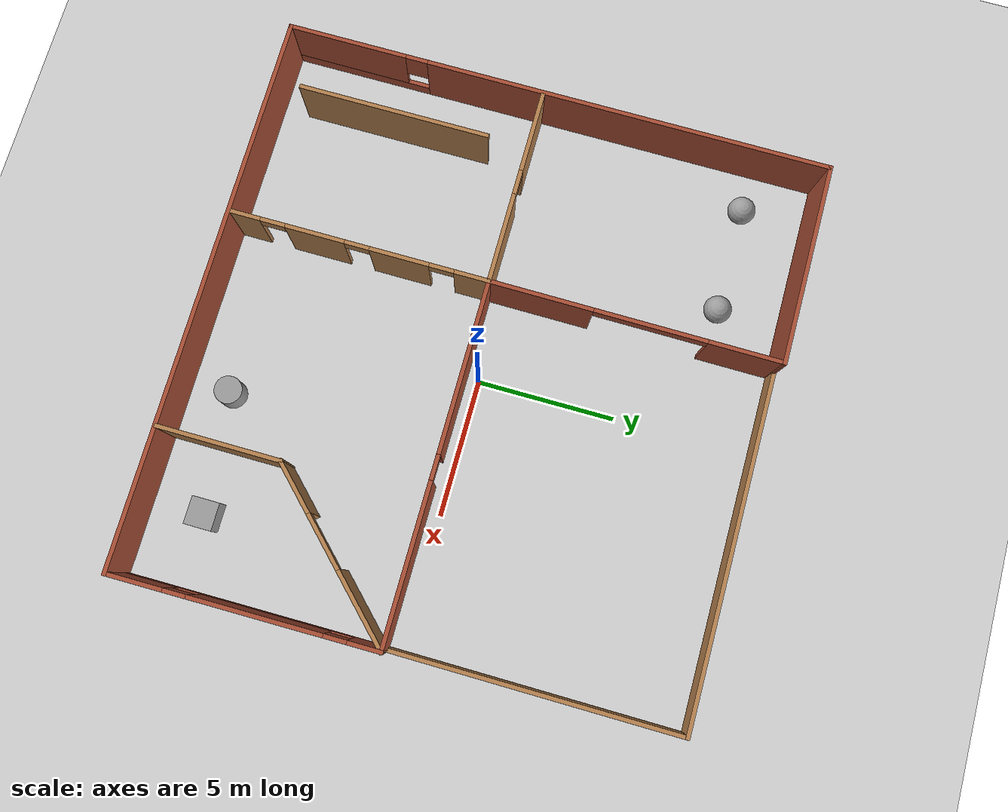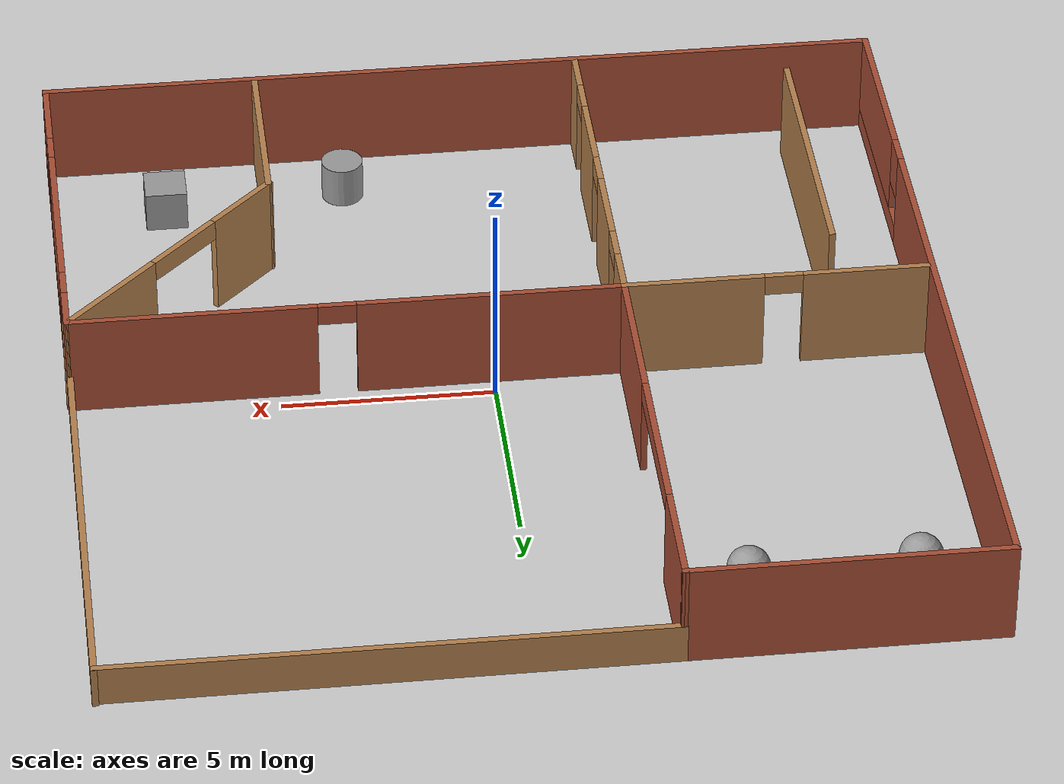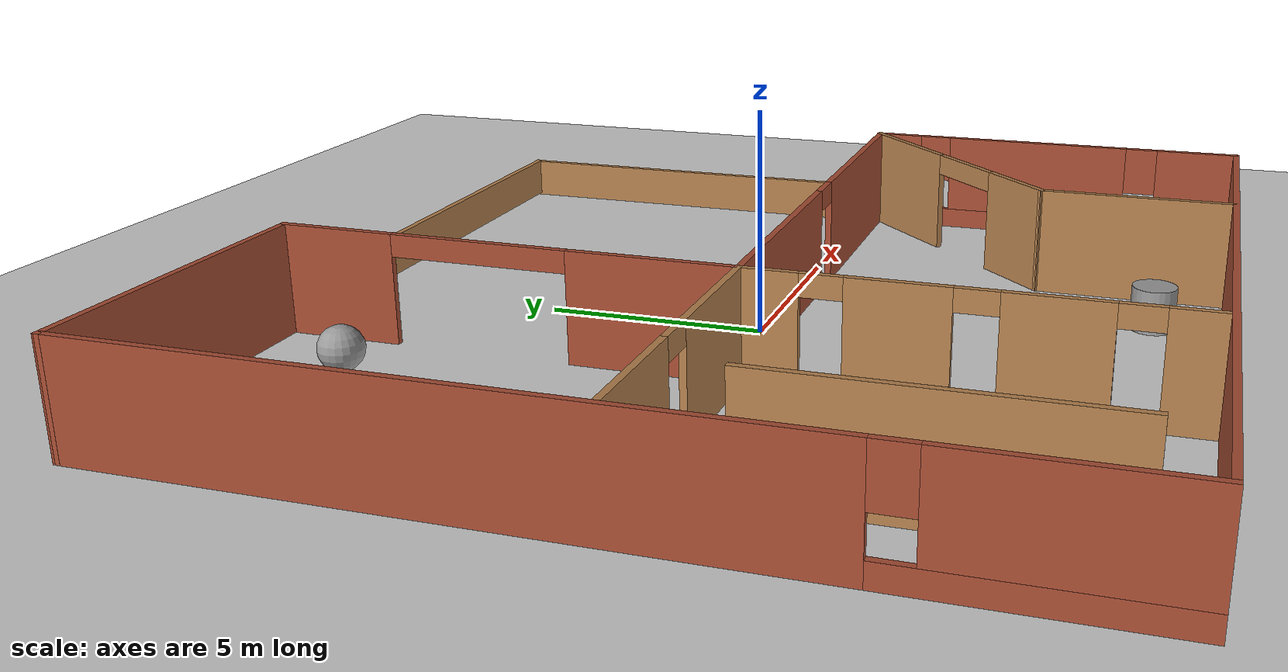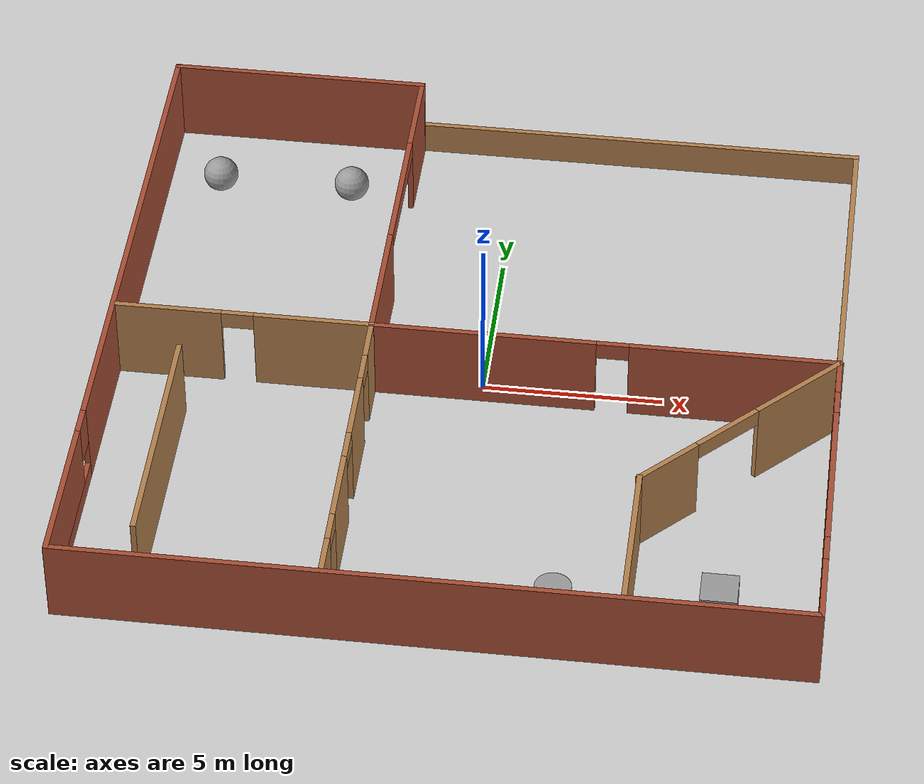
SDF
<sdf version="1.7">
 <world name="default">
  <model name="ground_plane">
   <static>1</static>
   <link name="link">
    <collision name="collision">
     <geometry><plane><normal>0 0 1</normal><size>100 100</size></plane></geometry>
     <surface><friction><ode><mu>100</mu><mu2>50</mu2></ode></friction></surface>
    </collision>
    <visual name="visual">
     <cast_shadows>0</cast_shadows>
     <geometry><plane><normal>0 0 1</normal><size>100 100</size></plane></geometry>
     <material>
      <script><uri>file://media/materials/scripts/gazebo.material</uri><name>Gazebo/Grey</name></script>
     </material>
    </visual>
   </link>
  </model>
  <model name="test_room">
   <pose>-0.185701 0.02346 0 0 -0 0</pose>
   <link name="Wall_1">
    <pose>-10.0852 -7e-06 0 0 -0 -1.5708</pose>
    <visual name="Wall_1_Visual_0">
     <pose>-2.60084 0 1.25 0 -0 0</pose>
     <geometry><box><size>14.8266 0.15 2.5</size></box></geometry>
     <material>
      <script><uri>file://media/materials/scripts/gazebo.material</uri><name>Gazebo/Bricks</name></script>
      <ambient>1 1 1 1</ambient>
     </material>
     <meta><layer>0</layer></meta>
    </visual>
    <collision name="Wall_1_Collision_0">
     <geometry><box><size>14.8266 0.15 2.5</size></box></geometry>
     <pose>-2.60084 0 1.25 0 -0 0</pose>
    </collision>
    <visual name="Wall_1_Visual_1">
     <pose>7.41331 0 0.25 0 -0 0</pose>
     <geometry><box><size>5.20167 0.15 0.5</size></box></geometry>
     <material>
      <script><uri>file://media/materials/scripts/gazebo.material</uri><name>Gazebo/Bricks</name></script>
      <ambient>1 1 1 1</ambient>
     </material>
     <meta><layer>0</layer></meta>
    </visual>
    <collision name="Wall_1_Collision_1">
     <geometry><box><size>5.20167 0.15 0.5</size></box></geometry>
     <pose>7.41331 0 0.25 0 -0 0</pose>
    </collision>
    <visual name="Wall_1_Visual_2">
     <pose>7.81331 0 1.5 0 -0 0</pose>
     <geometry><box><size>4.40167 0.15 2</size></box></geometry>
     <material>
      <script><uri>file://media/materials/scripts/gazebo.material</uri><name>Gazebo/Bricks</name></script>
      <ambient>1 1 1 1</ambient>
     </material>
     <meta><layer>0</layer></meta>
    </visual>
    <collision name="Wall_1_Collision_2">
     <geometry><box><size>4.40167 0.15 2</size></box></geometry>
     <pose>7.81331 0 1.5 0 -0 0</pose>
    </collision>
    <visual name="Wall_1_Visual_3">
     <pose>5.21248 0 1.9 0 -0 0</pose>
     <geometry><box><size>0.8 0.15 1.2</size></box></geometry>
     <material>
      <script><uri>file://media/materials/scripts/gazebo.material</uri><name>Gazebo/Bricks</name></script>
      <ambient>1 1 1 1</ambient>
     </material>
     <meta><layer>0</layer></meta>
    </visual>
    <collision name="Wall_1_Collision_3">
     <geometry><box><size>0.8 0.15 1.2</size></box></geometry>
     <pose>5.21248 0 1.9 0 -0 0</pose>
    </collision>
   </link>
   <link name="Wall_10">
    <pose>10.0526 -5.21899 0 0 -0 -1.56433</pose>
    <visual name="Wall_10_Visual_0">
     <pose>-4.1681 0 1.25 0 -0 0</pose>
     <geometry><box><size>1.23337 0.15 2.5</size></box></geometry>
     <material>
      <script><uri>file://media/materials/scripts/gazebo.material</uri><name>Gazebo/Bricks</name></script>
      <ambient>1 1 1 1</ambient>
     </material>
     <meta><layer>0</layer></meta>
    </visual>
    <collision name="Wall_10_Collision_0">
     <geometry><box><size>1.23337 0.15 2.5</size></box></geometry>
     <pose>-4.1681 0 1.25 0 -0 0</pose>
    </collision>
    <visual name="Wall_10_Visual_1">
     <pose>0.616686 0 0.25 0 -0 0</pose>
     <geometry><box><size>8.3362 0.15 0.5</size></box></geometry>
     <material>
      <script><uri>file://media/materials/scripts/gazebo.material</uri><name>Gazebo/Bricks</name></script>
      <ambient>1 1 1 1</ambient>
     </material>
     <meta><layer>0</layer></meta>
    </visual>
    <collision name="Wall_10_Collision_1">
     <geometry><box><size>8.3362 0.15 0.5</size></box></geometry>
     <pose>0.616686 0 0.25 0 -0 0</pose>
    </collision>
    <visual name="Wall_10_Visual_2">
     <pose>-0.410197 0 1.5 0 -0 0</pose>
     <geometry><box><size>4.68244 0.15 2</size></box></geometry>
     <material>
      <script><uri>file://media/materials/scripts/gazebo.material</uri><name>Gazebo/Bricks</name></script>
      <ambient>1 1 1 1</ambient>
     </material>
     <meta><layer>0</layer></meta>
    </visual>
    <collision name="Wall_10_Collision_2">
     <geometry><box><size>4.68244 0.15 2</size></box></geometry>
     <pose>-0.410197 0 1.5 0 -0 0</pose>
    </collision>
    <visual name="Wall_10_Visual_3">
     <pose>3.75791 0 1.5 0 -0 0</pose>
     <geometry><box><size>2.05376 0.15 2</size></box></geometry>
     <material>
      <script><uri>file://media/materials/scripts/gazebo.material</uri><name>Gazebo/Bricks</name></script>
      <ambient>1 1 1 1</ambient>
     </material>
     <meta><layer>0</layer></meta>
    </visual>
    <collision name="Wall_10_Collision_3">
     <geometry><box><size>2.05376 0.15 2</size></box></geometry>
     <pose>3.75791 0 1.5 0 -0 0</pose>
    </collision>
    <visual name="Wall_10_Visual_4">
     <pose>-3.15142 0 1.9 0 -0 0</pose>
     <geometry><box><size>0.8 0.15 1.2</size></box></geometry>
     <material>
      <script><uri>file://media/materials/scripts/gazebo.material</uri><name>Gazebo/Bricks</name></script>
      <ambient>1 1 1 1</ambient>
     </material>
     <meta><layer>0</layer></meta>
    </visual>
    <collision name="Wall_10_Collision_4">
     <geometry><box><size>0.8 0.15 1.2</size></box></geometry>
     <pose>-3.15142 0 1.9 0 -0 0</pose>
    </collision>
    <visual name="Wall_10_Visual_5">
     <pose>2.33102 0 1.9 0 -0 0</pose>
     <geometry><box><size>0.8 0.15 1.2</size></box></geometry>
     <material>
      <script><uri>file://media/materials/scripts/gazebo.material</uri><name>Gazebo/Bricks</name></script>
      <ambient>1 1 1 1</ambient>
     </material>
     <meta><layer>0</layer></meta>
    </visual>
    <collision name="Wall_10_Collision_5">
     <geometry><box><size>0.8 0.15 1.2</size></box></geometry>
     <pose>2.33102 0 1.9 0 -0 0</pose>
    </collision>
   </link>
   <link name="Wall_12">
    <collision name="Wall_12_Collision">
     <geometry><box><size>7.41264 0.15 2.5</size></box></geometry>
     <pose>0 0 1.25 0 -0 0</pose>
    </collision>
    <visual name="Wall_12_Visual">
     <pose>0 0 1.25 0 -0 0</pose>
     <geometry><box><size>7.41264 0.15 2.5</size></box></geometry>
     <material>
      <script><uri>file://media/materials/scripts/gazebo.material</uri><name>Gazebo/Bricks</name></script>
      <ambient>1 1 1 1</ambient>
     </material>
     <meta><layer>0</layer></meta>
    </visual>
    <pose>-6.45385 9.93841 0 0 -0 -0.000203</pose>
   </link>
   <link name="Wall_16">
    <pose>-6.41315 -0.507168 0 0 -0 3.14159</pose>
    <visual name="Wall_16_Visual_0">
     <pose>-1.94676 0 1.25 0 -0 0</pose>
     <geometry><box><size>3.35648 0.15 2.5</size></box></geometry>
     <material>
      <script><uri>file://media/materials/scripts/gazebo.material</uri><name>Gazebo/Wood</name></script>
      <ambient>1 1 1 1</ambient>
     </material>
     <meta><layer>0</layer></meta>
    </visual>
    <collision name="Wall_16_Collision_0">
     <geometry><box><size>3.35648 0.15 2.5</size></box></geometry>
     <pose>-1.94676 0 1.25 0 -0 0</pose>
    </collision>
    <visual name="Wall_16_Visual_1">
     <pose>2.12824 0 1.25 0 -0 0</pose>
     <geometry><box><size>2.99352 0.15 2.5</size></box></geometry>
     <material>
      <script><uri>file://media/materials/scripts/gazebo.material</uri><name>Gazebo/Wood</name></script>
      <ambient>1 1 1 1</ambient>
     </material>
     <meta><layer>0</layer></meta>
    </visual>
    <collision name="Wall_16_Collision_1">
     <geometry><box><size>2.99352 0.15 2.5</size></box></geometry>
     <pose>2.12824 0 1.25 0 -0 0</pose>
    </collision>
    <visual name="Wall_16_Visual_2">
     <pose>0.181481 0 2.25 0 -0 0</pose>
     <geometry><box><size>0.9 0.15 0.5</size></box></geometry>
     <material>
      <script><uri>file://media/materials/scripts/gazebo.material</uri><name>Gazebo/Wood</name></script>
      <ambient>1 1 1 1</ambient>
     </material>
     <meta><layer>0</layer></meta>
    </visual>
    <collision name="Wall_16_Collision_2">
     <geometry><box><size>0.9 0.15 0.5</size></box></geometry>
     <pose>0.181481 0 2.25 0 -0 0</pose>
    </collision>
   </link>
   <link name="Wall_18">
    <pose>-2.86315 -5.18217 0 0 -0 -1.5708</pose>
    <visual name="Wall_18_Visual_0">
     <pose>-4.08833 0 1.25 0 -0 0</pose>
     <geometry><box><size>1.32334 0.15 2.5</size></box></geometry>
     <material>
      <script><uri>file://media/materials/scripts/gazebo.material</uri><name>Gazebo/Wood</name></script>
      <ambient>1 1 1 1</ambient>
     </material>
     <meta><layer>0</layer></meta>
    </visual>
    <collision name="Wall_18_Collision_0">
     <geometry><box><size>1.32334 0.15 2.5</size></box></geometry>
     <pose>-4.08833 0 1.25 0 -0 0</pose>
    </collision>
    <visual name="Wall_18_Visual_1">
     <pose>-1.45004 0 1.25 0 -0 0</pose>
     <geometry><box><size>2.15324 0.15 2.5</size></box></geometry>
     <material>
      <script><uri>file://media/materials/scripts/gazebo.material</uri><name>Gazebo/Wood</name></script>
      <ambient>1 1 1 1</ambient>
     </material>
     <meta><layer>0</layer></meta>
    </visual>
    <collision name="Wall_18_Collision_1">
     <geometry><box><size>2.15324 0.15 2.5</size></box></geometry>
     <pose>-1.45004 0 1.25 0 -0 0</pose>
    </collision>
    <visual name="Wall_18_Visual_2">
     <pose>1.60632 0 1.25 0 -0 0</pose>
     <geometry><box><size>2.15948 0.15 2.5</size></box></geometry>
     <material>
      <script><uri>file://media/materials/scripts/gazebo.material</uri><name>Gazebo/Wood</name></script>
      <ambient>1 1 1 1</ambient>
     </material>
     <meta><layer>0</layer></meta>
    </visual>
    <collision name="Wall_18_Collision_2">
     <geometry><box><size>2.15948 0.15 2.5</size></box></geometry>
     <pose>1.60632 0 1.25 0 -0 0</pose>
    </collision>
    <visual name="Wall_18_Visual_3">
     <pose>4.16803 0 1.25 0 -0 0</pose>
     <geometry><box><size>1.16395 0.15 2.5</size></box></geometry>
     <material>
      <script><uri>file://media/materials/scripts/gazebo.material</uri><name>Gazebo/Wood</name></script>
      <ambient>1 1 1 1</ambient>
     </material>
     <meta><layer>0</layer></meta>
    </visual>
    <collision name="Wall_18_Collision_3">
     <geometry><box><size>1.16395 0.15 2.5</size></box></geometry>
     <pose>4.16803 0 1.25 0 -0 0</pose>
    </collision>
    <visual name="Wall_18_Visual_4">
     <pose>-2.97666 0 2.25 0 -0 0</pose>
     <geometry><box><size>0.9 0.15 0.5</size></box></geometry>
     <material>
      <script><uri>file://media/materials/scripts/gazebo.material</uri><name>Gazebo/Wood</name></script>
      <ambient>1 1 1 1</ambient>
     </material>
     <meta><layer>0</layer></meta>
    </visual>
    <collision name="Wall_18_Collision_4">
     <geometry><box><size>0.9 0.15 0.5</size></box></geometry>
     <pose>-2.97666 0 2.25 0 -0 0</pose>
    </collision>
    <visual name="Wall_18_Visual_5">
     <pose>0.076577 0 2.25 0 -0 0</pose>
     <geometry><box><size>0.9 0.15 0.5</size></box></geometry>
     <material>
      <script><uri>file://media/materials/scripts/gazebo.material</uri><name>Gazebo/Wood</name></script>
      <ambient>1 1 1 1</ambient>
     </material>
     <meta><layer>0</layer></meta>
    </visual>
    <collision name="Wall_18_Collision_5">
     <geometry><box><size>0.9 0.15 0.5</size></box></geometry>
     <pose>0.076577 0 2.25 0 -0 0</pose>
    </collision>
    <visual name="Wall_18_Visual_6">
     <pose>3.13605 0 2.25 0 -0 0</pose>
     <geometry><box><size>0.9 0.15 0.5</size></box></geometry>
     <material>
      <script><uri>file://media/materials/scripts/gazebo.material</uri><name>Gazebo/Wood</name></script>
      <ambient>1 1 1 1</ambient>
     </material>
     <meta><layer>0</layer></meta>
    </visual>
    <collision name="Wall_18_Collision_6">
     <geometry><box><size>0.9 0.15 0.5</size></box></geometry>
     <pose>3.13605 0 2.25 0 -0 0</pose>
    </collision>
   </link>
   <link name="Wall_20">
    <collision name="Wall_20_Collision">
     <geometry><box><size>7 0.15 2.5</size></box></geometry>
     <pose>0 0 1.25 0 -0 0</pose>
    </collision>
    <visual name="Wall_20_Visual">
     <pose>0 0 1.25 0 -0 0</pose>
     <geometry><box><size>7 0.15 2.5</size></box></geometry>
     <material>
      <script><uri>file://media/materials/scripts/gazebo.material</uri><name>Gazebo/Wood</name></script>
      <ambient>1 1 1 1</ambient>
     </material>
     <meta><layer>0</layer></meta>
    </visual>
    <pose>-7.96917 -5.44423 0 0 -0 -1.5708</pose>
   </link>
   <link name="Wall_22">
    <pose>7.51188 -3.01953 0 0 -0 -2.35619</pose>
    <visual name="Wall_22_Visual_0">
     <pose>-2.09265 0 1.25 0 -0 0</pose>
     <geometry><box><size>3.06471 0.15 2.5</size></box></geometry>
     <material>
      <script><uri>file://media/materials/scripts/gazebo.material</uri><name>Gazebo/Wood</name></script>
      <ambient>1 1 1 1</ambient>
     </material>
     <meta><layer>0</layer></meta>
    </visual>
    <collision name="Wall_22_Collision_0">
     <geometry><box><size>3.06471 0.15 2.5</size></box></geometry>
     <pose>-2.09265 0 1.25 0 -0 0</pose>
    </collision>
    <visual name="Wall_22_Visual_1">
     <pose>2.58752 0 1.25 0 -0 0</pose>
     <geometry><box><size>2.07496 0.15 2.5</size></box></geometry>
     <material>
      <script><uri>file://media/materials/scripts/gazebo.material</uri><name>Gazebo/Wood</name></script>
      <ambient>1 1 1 1</ambient>
     </material>
     <meta><layer>0</layer></meta>
    </visual>
    <collision name="Wall_22_Collision_1">
     <geometry><box><size>2.07496 0.15 2.5</size></box></geometry>
     <pose>2.58752 0 1.25 0 -0 0</pose>
    </collision>
    <visual name="Wall_22_Visual_2">
     <pose>0.494874 0 2.25 0 -0 0</pose>
     <geometry><box><size>2.11033 0.15 0.5</size></box></geometry>
     <material>
      <script><uri>file://media/materials/scripts/gazebo.material</uri><name>Gazebo/Wood</name></script>
      <ambient>1 1 1 1</ambient>
     </material>
     <meta><layer>0</layer></meta>
    </visual>
    <collision name="Wall_22_Collision_2">
     <geometry><box><size>2.11033 0.15 0.5</size></box></geometry>
     <pose>0.494874 0 2.25 0 -0 0</pose>
    </collision>
   </link>
   <link name="Wall_23">
    <collision name="Wall_23_Collision">
     <geometry><box><size>4.5 0.15 2.5</size></box></geometry>
     <pose>0 0 1.25 0 -0 0</pose>
    </collision>
    <visual name="Wall_23_Visual">
     <pose>0 0 1.25 0 -0 0</pose>
     <geometry><box><size>4.5 0.15 2.5</size></box></geometry>
     <material>
      <script><uri>file://media/materials/scripts/gazebo.material</uri><name>Gazebo/Wood</name></script>
      <ambient>1 1 1 1</ambient>
     </material>
     <meta><layer>0</layer></meta>
    </visual>
    <pose>5.00165 -7.70476 0 0 -0 -1.5708</pose>
   </link>
   <link name="Wall_3">
    <collision name="Wall_3_Collision">
     <geometry><box><size>20.3204 0.15 2.5</size></box></geometry>
     <pose>0 0 1.25 0 -0 0</pose>
    </collision>
    <visual name="Wall_3_Visual">
     <pose>0 0 1.25 0 -0 0</pose>
     <geometry><box><size>20.3204 0.15 2.5</size></box></geometry>
     <material>
      <script><uri>file://media/materials/scripts/gazebo.material</uri><name>Gazebo/Bricks</name></script>
      <ambient>1 1 1 1</ambient>
     </material>
     <meta><layer>0</layer></meta>
    </visual>
    <pose>8e-06 -9.93916 0 0 -0 0</pose>
   </link>
   <link name="Wall_7">
    <pose>-2.84231 4.71525 0 0 -0 -1.57458</pose>
    <visual name="Wall_7_Visual_0">
     <pose>-3.92845 0 1.25 0 -0 0</pose>
     <geometry><box><size>2.73806 0.15 2.5</size></box></geometry>
     <material>
      <script><uri>file://media/materials/scripts/gazebo.material</uri><name>Gazebo/Bricks</name></script>
      <ambient>1 1 1 1</ambient>
     </material>
     <meta><layer>0</layer></meta>
    </visual>
    <collision name="Wall_7_Collision_0">
     <geometry><box><size>2.73806 0.15 2.5</size></box></geometry>
     <pose>-3.92845 0 1.25 0 -0 0</pose>
    </collision>
    <visual name="Wall_7_Visual_1">
     <pose>3.38844 0 1.25 0 -0 0</pose>
     <geometry><box><size>3.81807 0.15 2.5</size></box></geometry>
     <material>
      <script><uri>file://media/materials/scripts/gazebo.material</uri><name>Gazebo/Bricks</name></script>
      <ambient>1 1 1 1</ambient>
     </material>
     <meta><layer>0</layer></meta>
    </visual>
    <collision name="Wall_7_Collision_1">
     <geometry><box><size>3.81807 0.15 2.5</size></box></geometry>
     <pose>3.38844 0 1.25 0 -0 0</pose>
    </collision>
    <visual name="Wall_7_Visual_2">
     <pose>-0.540004 0 2.25 0 -0 0</pose>
     <geometry><box><size>4.03882 0.15 0.5</size></box></geometry>
     <material>
      <script><uri>file://media/materials/scripts/gazebo.material</uri><name>Gazebo/Bricks</name></script>
      <ambient>1 1 1 1</ambient>
     </material>
     <meta><layer>0</layer></meta>
    </visual>
    <collision name="Wall_7_Collision_2">
     <geometry><box><size>4.03882 0.15 0.5</size></box></geometry>
     <pose>-0.540004 0 2.25 0 -0 0</pose>
    </collision>
   </link>
   <link name="Wall_8">
    <pose>3.58001 -0.508237 0 0 -0 -0.000166</pose>
    <visual name="Wall_8_Visual_0">
     <pose>-3.36964 0 1.25 0 -0 0</pose>
     <geometry><box><size>6.29492 0.15 2.5</size></box></geometry>
     <material>
      <script><uri>file://media/materials/scripts/gazebo.material</uri><name>Gazebo/Bricks</name></script>
      <ambient>1 1 1 1</ambient>
     </material>
     <meta><layer>0</layer></meta>
    </visual>
    <collision name="Wall_8_Collision_0">
     <geometry><box><size>6.29492 0.15 2.5</size></box></geometry>
     <pose>-3.36964 0 1.25 0 -0 0</pose>
    </collision>
    <visual name="Wall_8_Visual_1">
     <pose>3.59746 0 1.25 0 -0 0</pose>
     <geometry><box><size>5.83927 0.15 2.5</size></box></geometry>
     <material>
      <script><uri>file://media/materials/scripts/gazebo.material</uri><name>Gazebo/Bricks</name></script>
      <ambient>1 1 1 1</ambient>
     </material>
     <meta><layer>0</layer></meta>
    </visual>
    <collision name="Wall_8_Collision_1">
     <geometry><box><size>5.83927 0.15 2.5</size></box></geometry>
     <pose>3.59746 0 1.25 0 -0 0</pose>
    </collision>
    <visual name="Wall_8_Visual_2">
     <pose>0.227824 0 2.25 0 -0 0</pose>
     <geometry><box><size>0.9 0.15 0.5</size></box></geometry>
     <material>
      <script><uri>file://media/materials/scripts/gazebo.material</uri><name>Gazebo/Bricks</name></script>
      <ambient>1 1 1 1</ambient>
     </material>
     <meta><layer>0</layer></meta>
    </visual>
    <collision name="Wall_8_Collision_2">
     <geometry><box><size>0.9 0.15 0.5</size></box></geometry>
     <pose>0.227824 0 2.25 0 -0 0</pose>
    </collision>
   </link>
   <static>1</static>
  </model>
  <model name="wooden_fence">
   <link name="Wall_14">
    <pose>6.425 0 -0.775596 0 -0 1.5708</pose>
    <inertial>
     <inertia><ixx>0.01</ixx><ixy>0.0</ixy><ixz>0.0</ixz><iyy>0.01</iyy><iyz>0.0</iyz><izz>0.01</izz></inertia>
     <mass>1.0</mass>
    </inertial>
    <visual name="Wall_14_Visual">
     <pose>0 0 1.25 0 -0 0</pose>
     <geometry><box><size>10.5 0.15 1.0201</size></box></geometry>
     <material>
      <script><uri>file://media/materials/scripts/gazebo.material</uri><name>Gazebo/Wood</name></script>
      <ambient>1 1 1 1</ambient>
      <shader type="pixel"/>
     </material>
     <meta><layer>0</layer></meta>
    </visual>
    <collision name="Wall_14_Collision">
     <pose>0 0 1.25 0 -0 0</pose>
     <geometry><box><size>10.5 0.15 1.0201</size></box></geometry>
     <surface>
      <friction>
       <ode><mu>1</mu><mu2>1</mu2><fdir1>0 0 0</fdir1><slip1>0</slip1><slip2>0</slip2></ode>
       <torsional>
        <coefficient>1</coefficient>
        <patch_radius>0</patch_radius>
        <surface_radius>0</surface_radius>
        <use_patch_radius>1</use_patch_radius>
        <ode><slip>0</slip></ode>
       </torsional>
      </friction>
      <bounce><restitution_coefficient>0</restitution_coefficient><threshold>1e+06</threshold></bounce>
      <contact>
       <collide_without_contact>0</collide_without_contact>
       <collide_without_contact_bitmask>1</collide_without_contact_bitmask>
       <collide_bitmask>1</collide_bitmask>
       <ode>
        <soft_cfm>0</soft_cfm>
        <soft_erp>0.2</soft_erp>
        <kp>1e+13</kp>
        <kd>1</kd>
        <max_vel>0.01</max_vel>
        <min_depth>0</min_depth>
       </ode>
       <bullet>
        <split_impulse>1</split_impulse>
        <split_impulse_penetration_threshold>-0.01</split_impulse_penetration_threshold>
        <soft_cfm>0</soft_cfm>
        <soft_erp>0.2</soft_erp>
        <kp>1e+13</kp>
        <kd>1</kd>
       </bullet>
      </contact>
     </surface>
    </collision>
   </link>
   <link name="Wall_16">
    <pose>0 5.175 -0.744158 0 -0 3.14159</pose>
    <inertial>
     <inertia><ixx>0.01</ixx><ixy>0.0</ixy><ixz>0.0</ixz><iyy>0.01</iyy><iyz>0.0</iyz><izz>0.01</izz></inertia>
     <mass>1.0</mass>
    </inertial>
    <visual name="Wall_16_Visual">
     <pose>0 0 1.25 0 -0 0</pose>
     <geometry><box><size>13 0.15 0.970964</size></box></geometry>
     <material>
      <script><uri>file://media/materials/scripts/gazebo.material</uri><name>Gazebo/Wood</name></script>
      <ambient>1 1 1 1</ambient>
      <shader type="pixel"/>
     </material>
     <meta><layer>0</layer></meta>
    </visual>
    <collision name="Wall_16_Collision">
     <pose>0 0 1.25 0 -0 0</pose>
     <geometry><box><size>13 0.15 0.970964</size></box></geometry>
     <surface>
      <friction>
       <ode><mu>1</mu><mu2>1</mu2><fdir1>0 0 0</fdir1><slip1>0</slip1><slip2>0</slip2></ode>
       <torsional>
        <coefficient>1</coefficient>
        <patch_radius>0</patch_radius>
        <surface_radius>0</surface_radius>
        <use_patch_radius>1</use_patch_radius>
        <ode><slip>0</slip></ode>
       </torsional>
      </friction>
      <bounce><restitution_coefficient>0</restitution_coefficient><threshold>1e+06</threshold></bounce>
      <contact>
       <collide_without_contact>0</collide_without_contact>
       <collide_without_contact_bitmask>1</collide_without_contact_bitmask>
       <collide_bitmask>1</collide_bitmask>
       <ode>
        <soft_cfm>0</soft_cfm>
        <soft_erp>0.2</soft_erp>
        <kp>1e+13</kp>
        <kd>1</kd>
        <max_vel>0.01</max_vel>
        <min_depth>0</min_depth>
       </ode>
       <bullet>
        <split_impulse>1</split_impulse>
        <split_impulse_penetration_threshold>-0.01</split_impulse_penetration_threshold>
        <soft_cfm>0</soft_cfm>
        <soft_erp>0.2</soft_erp>
        <kp>1e+13</kp>
        <kd>1</kd>
       </bullet>
      </contact>
     </surface>
    </collision>
   </link>
   <static>1</static>
   <pose>3.4044 4.80916 0 0 -0 0</pose>
  </model>
  <model name="unit_box">
   <pose>7.18094 -7.86108 0.5 0 -0 0</pose>
   <link name="link">
    <inertial>
     <mass>1</mass>
     <inertia>
      <ixx>0.166667</ixx>
      <ixy>0</ixy>
      <ixz>0</ixz>
      <iyy>0.166667</iyy>
      <iyz>0</iyz>
      <izz>0.166667</izz>
     </inertia>
    </inertial>
    <collision name="collision"><geometry><box><size>1 1 1</size></box></geometry></collision>
    <visual name="visual">
     <geometry><box><size>1 1 1</size></box></geometry>
     <material>
      <script><name>Gazebo/Grey</name><uri>file://media/materials/scripts/gazebo.material</uri></script>
     </material>
    </visual>
   </link>
  </model>
  <model name="unit_cylinder">
   <pose>2.83688 -8.3326 0.5 0 -0 0</pose>
   <link name="link">
    <inertial>
     <mass>1</mass>
     <inertia><ixx>0.145833</ixx><ixy>0</ixy><ixz>0</ixz><iyy>0.145833</iyy><iyz>0</iyz><izz>0.125</izz></inertia>
    </inertial>
    <collision name="collision">
     <geometry><cylinder><radius>0.5</radius><length>1</length></cylinder></geometry>
    </collision>
    <visual name="visual">
     <geometry><cylinder><radius>0.5</radius><length>1</length></cylinder></geometry>
     <material>
      <script><name>Gazebo/Grey</name><uri>file://media/materials/scripts/gazebo.material</uri></script>
     </material>
    </visual>
   </link>
  </model>
  <model name="unit_sphere">
   <pose>-8.67672 7.58399 0.5 0 -0 0</pose>
   <link name="link">
    <inertial>
     <mass>1</mass>
     <inertia><ixx>0.1</ixx><ixy>0</ixy><ixz>0</ixz><iyy>0.1</iyy><iyz>0</iyz><izz>0.1</izz></inertia>
    </inertial>
    <collision name="collision"><geometry><sphere><radius>0.5</radius></sphere></geometry></collision>
    <visual name="visual">
     <geometry><sphere><radius>0.5</radius></sphere></geometry>
     <material>
      <script><name>Gazebo/Grey</name><uri>file://media/materials/scripts/gazebo.material</uri></script>
     </material>
    </visual>
   </link>
  </model>
  <model name="unit_sphere_0">
   <pose>-4.80068 7.60634 0.5 0 -0 0</pose>
   <link name="link">
    <inertial>
     <mass>1</mass>
     <inertia><ixx>0.1</ixx><ixy>0</ixy><ixz>0</ixz><iyy>0.1</iyy><iyz>0</iyz><izz>0.1</izz></inertia>
    </inertial>
    <collision name="collision"><geometry><sphere><radius>0.5</radius></sphere></geometry></collision>
    <visual name="visual">
     <geometry><sphere><radius>0.5</radius></sphere></geometry>
     <material>
      <script><name>Gazebo/Grey</name><uri>file://media/materials/scripts/gazebo.material</uri></script>
     </material>
    </visual>
   </link>
  </model>
 </world>
</sdf>
